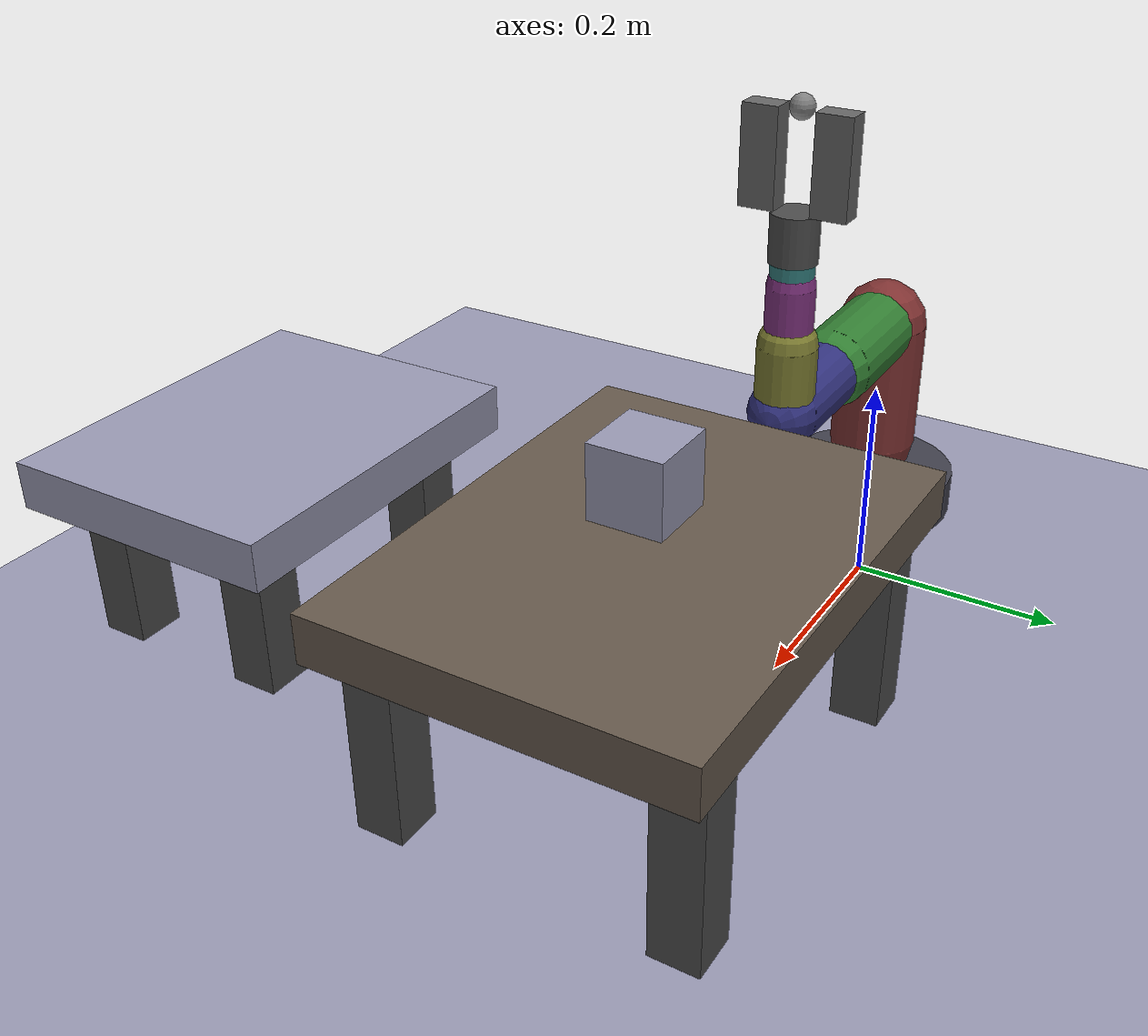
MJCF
<!--
  七轴机械臂 Pick & Place 场景
  模型说明：七自由度机械臂 + 平行夹爪，完成从取物桌抓取物体并放到放物区的任务。
-->

<mujoco model="arm7_pick_place">
  <!-- 仿真选项：时间步长 2ms，重力沿 -z -->
  <option timestep="0.002" gravity="0 0 -9.81"/>

  <!-- 默认属性：关节阻尼与转动惯量、几何体摩擦与颜色 -->
  <default>
    <joint type="hinge" damping="1" armature="0.01"/>
    <geom friction="1 0.5 0.5" rgba="0.6 0.6 0.7 1"/>
  </default>

  <!-- 资源：纹理与材质 -->
  <asset>
    <texture type="skybox" builtin="gradient" rgb1="0.4 0.5 0.6" rgb2="0.1 0.1 0.2" width="512" height="512"/>
    <texture name="grid" type="2d" builtin="checker" width="512" height="512" rgb1="0.2 0.2 0.25" rgb2="0.3 0.3 0.35"/>
    <material name="grid" texture="grid" texrepeat="2 2" reflectance="0.1"/>
    <material name="object" rgba="0.9 0.6 0.2 1"/>
    <material name="place_zone" rgba="0.2 0.7 0.3 0.4"/>
  </asset>

  <worldbody>
    <!-- 环境光与地面 -->
    <light pos="0 0 3" dir="0 0 -1" diffuse="1 1 1"/>
    <geom name="floor" type="plane" size="1 1 0.1" material="grid"/>

    <!-- 取物桌：桌面 + 四腿，物体从此处抓取 -->
    <body name="table_pick" pos="0.45 0 0.25">
      <geom name="table_surface" type="box" size="0.2 0.15 0.02" rgba="0.4 0.35 0.3 1"/>
      <geom name="table_leg1" type="box" pos="-0.15 -0.12 -0.1" size="0.02 0.02 0.08" rgba="0.3 0.3 0.3 1"/>
      <geom name="table_leg2" type="box" pos="0.15 -0.12 -0.1" size="0.02 0.02 0.08" rgba="0.3 0.3 0.3 1"/>
      <geom name="table_leg3" type="box" pos="-0.15 0.12 -0.1" size="0.02 0.02 0.08" rgba="0.3 0.3 0.3 1"/>
      <geom name="table_leg4" type="box" pos="0.15 0.12 -0.1" size="0.02 0.02 0.08" rgba="0.3 0.3 0.3 1"/>
    </body>

    <!-- 放物区（目标区域）：物体被放置到此桌面 -->
    <body name="table_place" pos="0.45 -0.35 0.25">
      <geom name="place_surface" type="box" size="0.15 0.12 0.02" material="place_zone"/>
      <geom name="place_leg1" type="box" pos="-0.1 -0.07 -0.08" size="0.02 0.02 0.06" rgba="0.3 0.3 0.3 1"/>
      <geom name="place_leg2" type="box" pos="0.1 -0.07 -0.08" size="0.02 0.02 0.06" rgba="0.3 0.3 0.3 1"/>
      <geom name="place_leg3" type="box" pos="-0.1 0.07 -0.08" size="0.02 0.02 0.06" rgba="0.3 0.3 0.3 1"/>
      <geom name="place_leg4" type="box" pos="0.1 0.07 -0.08" size="0.02 0.02 0.06" rgba="0.3 0.3 0.3 1"/>
    </body>

    <!-- 待抓取物体：自由关节，可被夹爪接触带动，小方块 -->
    <body name="object" pos="0.45 0 0.32">
      <freejoint name="object_joint"/>
      <geom name="box_to_pick" type="box" size="0.03 0.03 0.03" material="object" mass="0.05"/>
    </body>

    <!-- ========== 七轴机械臂：base -> link1..link6 -> 末端 ee_link -> 夹爪 ========== -->
    <body name="base_link" pos="0 0 0.1">
      <geom name="base_geom" type="cylinder" size="0.08 0.02" rgba="0.25 0.25 0.3 1"/>
      <!-- j1：基座旋转，绕 z 轴，±180° -->
      <joint name="j1" type="hinge" axis="0 0 1" range="-180 180"/>
      <body name="link1" pos="0 0 0.05">
        <geom name="L1" type="capsule" fromto="0 0 0 0 0 0.12" size="0.04" rgba="0.5 0.2 0.2 1"/>
        <!-- j2：肩部，绕 y 轴，±90° -->
        <joint name="j2" type="hinge" axis="0 1 0" pos="0 0 0.12" range="-90 90"/>
        <body name="link2" pos="0 0 0.12">
          <geom name="L2" type="capsule" fromto="0 0 0 0.12 0 0" size="0.035" rgba="0.2 0.5 0.2 1"/>
          <!-- j3：肘部，绕 y 轴，±90° -->
          <joint name="j3" type="hinge" axis="0 1 0" pos="0.12 0 0" range="-90 90"/>
          <body name="link3" pos="0.12 0 0">
            <geom name="L3" type="capsule" fromto="0 0 0 0.1 0 0" size="0.03" rgba="0.2 0.2 0.5 1"/>
            <!-- j4：腕部 1，绕 x 轴，±180° -->
            <joint name="j4" type="hinge" axis="1 0 0" pos="0.1 0 0" range="-180 180"/>
            <body name="link4" pos="0.1 0 0">
              <geom name="L4" type="capsule" fromto="0 0 0 0 0 0.06" size="0.025" rgba="0.5 0.5 0.2 1"/>
              <!-- j5：腕部 2，绕 y 轴，±90° -->
              <joint name="j5" type="hinge" axis="0 1 0" pos="0 0 0.06" range="-90 90"/>
              <body name="link5" pos="0 0 0.06">
                <geom name="L5" type="capsule" fromto="0 0 0 0 0 0.05" size="0.02" rgba="0.5 0.2 0.5 1"/>
                <!-- j6：腕部 3，绕 x 轴，±180° -->
                <joint name="j6" type="hinge" axis="1 0 0" pos="0 0 0.05" range="-180 180"/>
                <body name="link6" pos="0 0 0.05">
                  <geom name="L6" type="capsule" fromto="0 0 0 0 0 0.04" size="0.018" rgba="0.2 0.5 0.5 1"/>
                  <!-- j7：末端俯仰，绕 y 轴，±90° -->
                  <joint name="j7" type="hinge" axis="0 1 0" pos="0 0 0.04" range="-90 90"/>
                  <body name="ee_link" pos="0 0 0.04">
                    <geom name="ee_geom" type="cylinder" size="0.02 0.02" rgba="0.3 0.3 0.3 1"/>
                    <!-- 夹爪左指：slide 关节，沿 y 向内收，范围 -0.04~0 -->
                    <body name="finger_left" pos="0 -0.03 0.06">
                      <joint name="gripper_left" type="slide" axis="0 1 0" range="-0.04 0" damping="0.5"/>
                      <geom name="finger_L" type="box" size="0.01 0.015 0.04" pos="0 0 0" rgba="0.4 0.4 0.4 1"/>
                    </body>
                    <!-- 夹爪右指：与左指对称，由 equality 约束同步 -->
                    <body name="finger_right" pos="0 0.03 0.06">
                      <joint name="gripper_right" type="slide" axis="0 -1 0" range="-0.04 0" damping="0.5"/>
                      <geom name="finger_R" type="box" size="0.01 0.015 0.04" pos="0 0 0" rgba="0.4 0.4 0.4 1"/>
                    </body>
                    <!-- 末端参考点，可用于 IK/笛卡尔控制 -->
                    <site name="ee_site" pos="0 0 0.1" size="0.01"/>
                  </body>
                </body>
              </body>
            </body>
          </body>
        </body>
      </body>
    </body>
  </worldbody>

  <!-- 约束：夹爪左右指同步运动（关节值相等） -->
  <equality>
    <joint joint1="gripper_left" joint2="gripper_right" polycoef="0 1 0 0 0"/>
  </equality>

  <!-- 驱动器：7 个臂关节位置伺服 + 1 个夹爪位置伺服，ctrl 顺序即 j1..j7, gripper_left -->
  <actuator>
    <position name="act_j1" joint="j1" kp="80" kv="4" ctrlrange="-3.14 3.14"/>
    <position name="act_j2" joint="j2" kp="80" kv="4" ctrlrange="-1.57 1.57"/>
    <position name="act_j3" joint="j3" kp="80" kv="4" ctrlrange="-1.57 1.57"/>
    <position name="act_j4" joint="j4" kp="60" kv="3" ctrlrange="-3.14 3.14"/>
    <position name="act_j5" joint="j5" kp="60" kv="3" ctrlrange="-1.57 1.57"/>
    <position name="act_j6" joint="j6" kp="60" kv="3" ctrlrange="-3.14 3.14"/>
    <position name="act_j7" joint="j7" kp="60" kv="3" ctrlrange="-1.57 1.57"/>
    <position name="act_gripper" joint="gripper_left" kp="200" kv="10" ctrlrange="-0.04 0"/>
  </actuator>
</mujoco>
